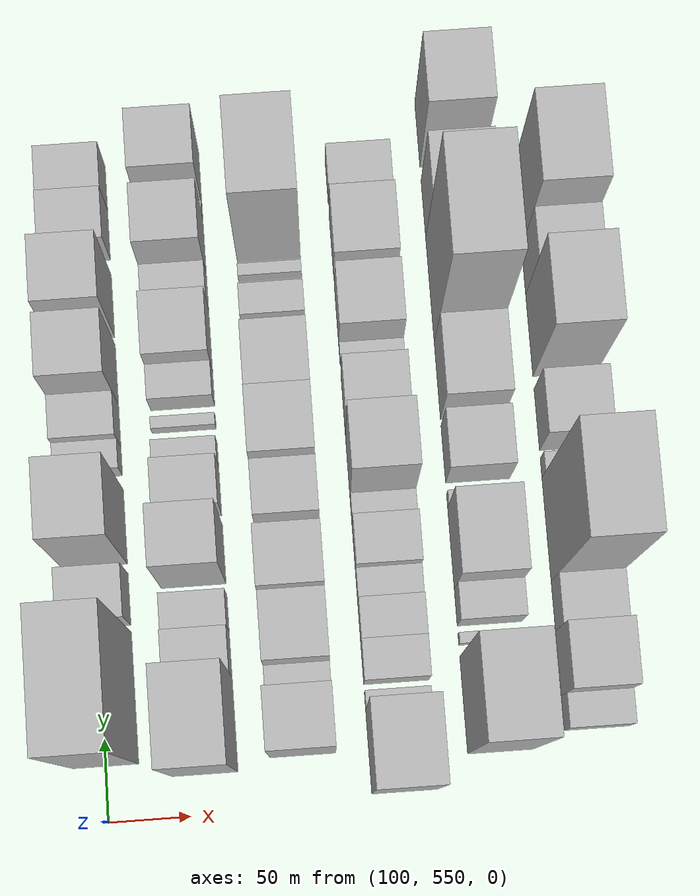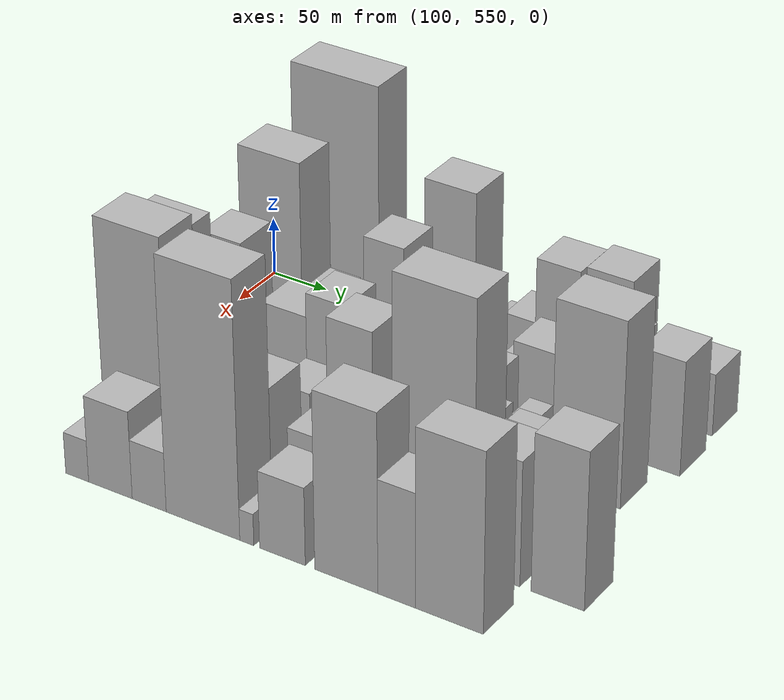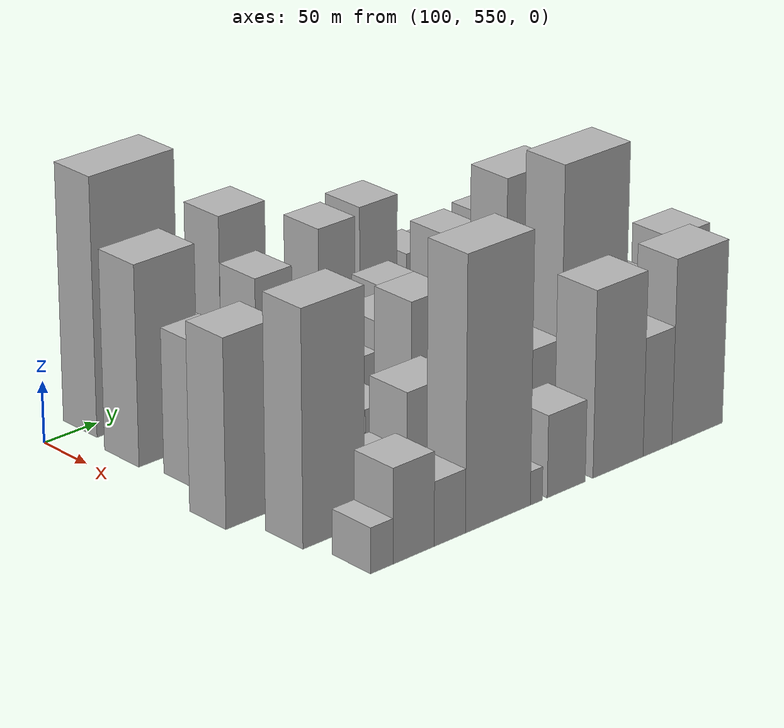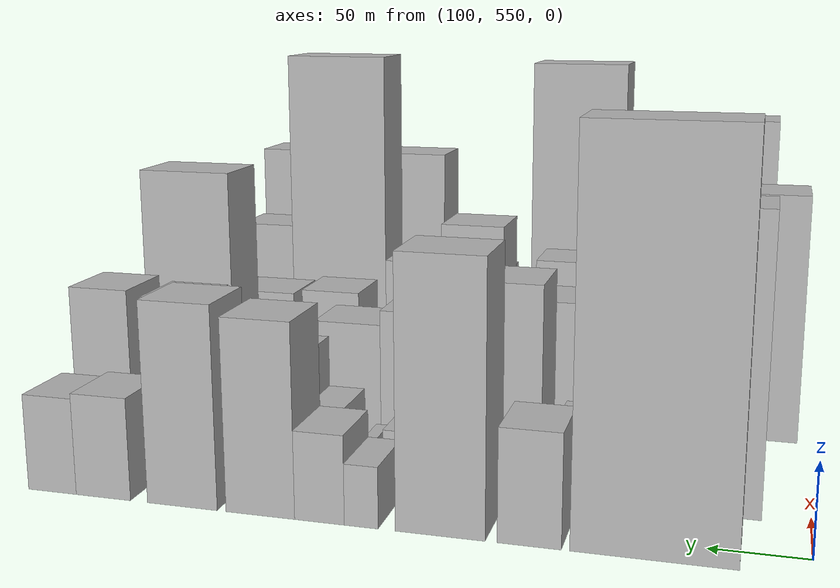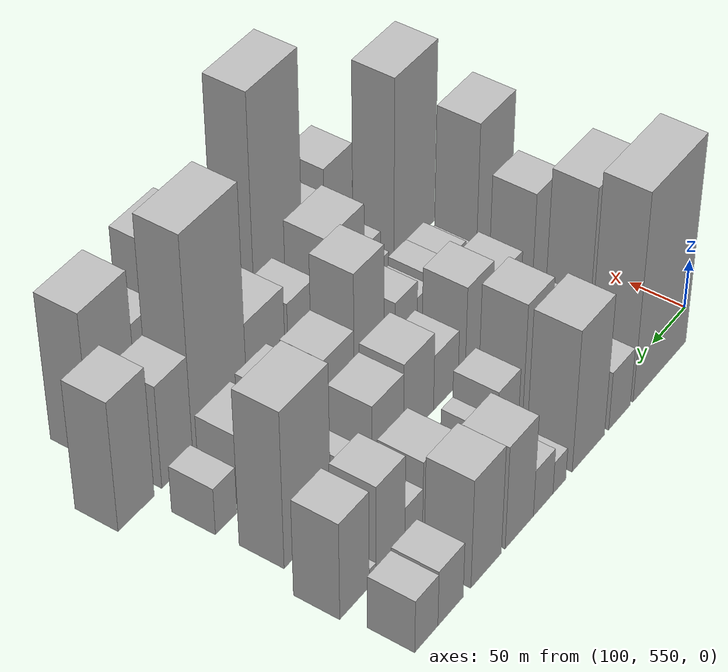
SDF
<sdf version="1.6">
 <world name="default">
  <model name="building_46">
   <static>1</static>
   <pose>100.0000 624.0056 0 0.000000 0.000000 0.000000</pose>
   <link name="link">
    <pose>0 0 105.00 0 0 0</pose>
    <collision name="collision"><geometry><box><size>40.0000 80.5047 210.0000</size></box></geometry></collision>
    <visual name="visual">
     <cast_shadows>0</cast_shadows>
     <geometry><box><size>40.0000 80.5047 210.0000</size></box></geometry>
     <material>
      <script>
       <uri>model://HANNAS_wall/materials/scripts</uri>
       <uri>model://HANNAS_wall/materials/textures</uri>
       <name>vrc/HANNAS_wall</name>
      </script>
     </material>
    </visual>
   </link>
  </model>
  <model name="building_47">
   <static>1</static>
   <pose>100.0000 684.2631 0 0.000000 0.000000 0.000000</pose>
   <link name="link">
    <pose>0 0 30.00 0 0 0</pose>
    <collision name="collision"><geometry><box><size>40.0000 32.0104 60.0000</size></box></geometry></collision>
    <visual name="visual">
     <cast_shadows>0</cast_shadows>
     <geometry><box><size>40.0000 32.0104 60.0000</size></box></geometry>
     <material>
      <script>
       <uri>model://HANNAS_wall/materials/scripts</uri>
       <uri>model://HANNAS_wall/materials/textures</uri>
       <name>vrc/HANNAS_wall</name>
      </script>
     </material>
    </visual>
   </link>
  </model>
  <model name="building_48">
   <static>1</static>
   <pose>100.0000 729.4753 0 0.000000 0.000000 0.000000</pose>
   <link name="link">
    <pose>0 0 72.00 0 0 0</pose>
    <collision name="collision"><geometry><box><size>40.0000 46.4140 144.0000</size></box></geometry></collision>
    <visual name="visual">
     <cast_shadows>0</cast_shadows>
     <geometry><box><size>40.0000 46.4140 144.0000</size></box></geometry>
     <material>
      <script>
       <uri>model://HANNAS_wall/materials/scripts</uri>
       <uri>model://HANNAS_wall/materials/textures</uri>
       <name>vrc/HANNAS_wall</name>
      </script>
     </material>
    </visual>
   </link>
  </model>
  <model name="building_49">
   <static>1</static>
   <pose>100.0000 770.7109 0 0.000000 0.000000 0.000000</pose>
   <link name="link">
    <pose>0 0 16.50 0 0 0</pose>
    <collision name="collision"><geometry><box><size>40.0000 18.0574 33.0000</size></box></geometry></collision>
    <visual name="visual">
     <cast_shadows>0</cast_shadows>
     <geometry><box><size>40.0000 18.0574 33.0000</size></box></geometry>
     <material>
      <script>
       <uri>model://HANNAS_wall/materials/scripts</uri>
       <uri>model://HANNAS_wall/materials/textures</uri>
       <name>vrc/HANNAS_wall</name>
      </script>
     </material>
    </visual>
   </link>
  </model>
  <model name="building_50">
   <static>1</static>
   <pose>100.0000 793.2319 0 0.000000 0.000000 0.000000</pose>
   <link name="link">
    <pose>0 0 24.00 0 0 0</pose>
    <collision name="collision"><geometry><box><size>40.0000 26.9845 48.0000</size></box></geometry></collision>
    <visual name="visual">
     <cast_shadows>0</cast_shadows>
     <geometry><box><size>40.0000 26.9845 48.0000</size></box></geometry>
     <material>
      <script>
       <uri>model://HANNAS_wall/materials/scripts</uri>
       <uri>model://HANNAS_wall/materials/textures</uri>
       <name>vrc/HANNAS_wall</name>
      </script>
     </material>
    </visual>
   </link>
  </model>
  <model name="building_51">
   <static>1</static>
   <pose>100.0000 825.8351 0 0.000000 0.000000 0.000000</pose>
   <link name="link">
    <pose>0 0 52.50 0 0 0</pose>
    <collision name="collision"><geometry><box><size>40.0000 38.2219 105.0000</size></box></geometry></collision>
    <visual name="visual">
     <cast_shadows>0</cast_shadows>
     <geometry><box><size>40.0000 38.2219 105.0000</size></box></geometry>
     <material>
      <script>
       <uri>model://HANNAS_wall/materials/scripts</uri>
       <uri>model://HANNAS_wall/materials/textures</uri>
       <name>vrc/HANNAS_wall</name>
      </script>
     </material>
    </visual>
   </link>
  </model>
  <model name="building_52">
   <static>1</static>
   <pose>100.0000 870.0385 0 0.000000 0.000000 0.000000</pose>
   <link name="link">
    <pose>0 0 55.50 0 0 0</pose>
    <collision name="collision"><geometry><box><size>40.0000 40.1848 111.0000</size></box></geometry></collision>
    <visual name="visual">
     <cast_shadows>0</cast_shadows>
     <geometry><box><size>40.0000 40.1848 111.0000</size></box></geometry>
     <material>
      <script>
       <uri>model://HANNAS_wall/materials/scripts</uri>
       <uri>model://HANNAS_wall/materials/textures</uri>
       <name>vrc/HANNAS_wall</name>
      </script>
     </material>
    </visual>
   </link>
  </model>
  <model name="building_53">
   <static>1</static>
   <pose>100.0000 916.3152 0 0.000000 0.000000 0.000000</pose>
   <link name="link">
    <pose>0 0 28.50 0 0 0</pose>
    <collision name="collision"><geometry><box><size>40.0000 32.3685 57.0000</size></box></geometry></collision>
    <visual name="visual">
     <cast_shadows>0</cast_shadows>
     <geometry><box><size>40.0000 32.3685 57.0000</size></box></geometry>
     <material>
      <script>
       <uri>model://HANNAS_wall/materials/scripts</uri>
       <uri>model://HANNAS_wall/materials/textures</uri>
       <name>vrc/HANNAS_wall</name>
      </script>
     </material>
    </visual>
   </link>
  </model>
  <model name="building_54">
   <static>1</static>
   <pose>100.0000 947.0214 0 0.000000 0.000000 0.000000</pose>
   <link name="link">
    <pose>0 0 27.00 0 0 0</pose>
    <collision name="collision"><geometry><box><size>40.0000 29.0439 54.0000</size></box></geometry></collision>
    <visual name="visual">
     <cast_shadows>0</cast_shadows>
     <geometry><box><size>40.0000 29.0439 54.0000</size></box></geometry>
     <material>
      <script>
       <uri>model://HANNAS_wall/materials/scripts</uri>
       <uri>model://HANNAS_wall/materials/textures</uri>
       <name>vrc/HANNAS_wall</name>
      </script>
     </material>
    </visual>
   </link>
  </model>
  <model name="building_99">
   <static>1</static>
   <pose>160.0000 603.3203 0 0.000000 0.000000 0.000000</pose>
   <link name="link">
    <pose>0 0 81.00 0 0 0</pose>
    <collision name="collision"><geometry><box><size>40.0000 57.2620 162.0000</size></box></geometry></collision>
    <visual name="visual">
     <cast_shadows>0</cast_shadows>
     <geometry><box><size>40.0000 57.2620 162.0000</size></box></geometry>
     <material>
      <script>
       <uri>model://HANNAS_wall/materials/scripts</uri>
       <uri>model://HANNAS_wall/materials/textures</uri>
       <name>vrc/HANNAS_wall</name>
      </script>
     </material>
    </visual>
   </link>
  </model>
  <model name="building_100">
   <static>1</static>
   <pose>160.0000 645.9640 0 0.000000 0.000000 0.000000</pose>
   <link name="link">
    <pose>0 0 25.50 0 0 0</pose>
    <collision name="collision"><geometry><box><size>40.0000 28.0254 51.0000</size></box></geometry></collision>
    <visual name="visual">
     <cast_shadows>0</cast_shadows>
     <geometry><box><size>40.0000 28.0254 51.0000</size></box></geometry>
     <material>
      <script>
       <uri>model://HANNAS_wall/materials/scripts</uri>
       <uri>model://HANNAS_wall/materials/textures</uri>
       <name>vrc/HANNAS_wall</name>
      </script>
     </material>
    </visual>
   </link>
  </model>
  <model name="building_101">
   <static>1</static>
   <pose>160.0000 671.3291 0 0.000000 0.000000 0.000000</pose>
   <link name="link">
    <pose>0 0 21.00 0 0 0</pose>
    <collision name="collision"><geometry><box><size>40.0000 22.7048 42.0000</size></box></geometry></collision>
    <visual name="visual">
     <cast_shadows>0</cast_shadows>
     <geometry><box><size>40.0000 22.7048 42.0000</size></box></geometry>
     <material>
      <script>
       <uri>model://HANNAS_wall/materials/scripts</uri>
       <uri>model://HANNAS_wall/materials/textures</uri>
       <name>vrc/HANNAS_wall</name>
      </script>
     </material>
    </visual>
   </link>
  </model>
  <model name="building_102">
   <static>1</static>
   <pose>160.0000 707.9195 0 0.000000 0.000000 0.000000</pose>
   <link name="link">
    <pose>0 0 58.50 0 0 0</pose>
    <collision name="collision"><geometry><box><size>40.0000 36.4761 117.0000</size></box></geometry></collision>
    <visual name="visual">
     <cast_shadows>0</cast_shadows>
     <geometry><box><size>40.0000 36.4761 117.0000</size></box></geometry>
     <material>
      <script>
       <uri>model://HANNAS_wall/materials/scripts</uri>
       <uri>model://HANNAS_wall/materials/textures</uri>
       <name>vrc/HANNAS_wall</name>
      </script>
     </material>
    </visual>
   </link>
  </model>
  <model name="building_103">
   <static>1</static>
   <pose>160.0000 747.2715 0 0.000000 0.000000 0.000000</pose>
   <link name="link">
    <pose>0 0 28.50 0 0 0</pose>
    <collision name="collision"><geometry><box><size>40.0000 30.2279 57.0000</size></box></geometry></collision>
    <visual name="visual">
     <cast_shadows>0</cast_shadows>
     <geometry><box><size>40.0000 30.2279 57.0000</size></box></geometry>
     <material>
      <script>
       <uri>model://HANNAS_wall/materials/scripts</uri>
       <uri>model://HANNAS_wall/materials/textures</uri>
       <name>vrc/HANNAS_wall</name>
      </script>
     </material>
    </visual>
   </link>
  </model>
  <model name="building_104">
   <static>1</static>
   <pose>160.0000 770.1640 0 0.000000 0.000000 0.000000</pose>
   <link name="link">
    <pose>0 0 15.00 0 0 0</pose>
    <collision name="collision"><geometry><box><size>40.0000 15.5571 30.0000</size></box></geometry></collision>
    <visual name="visual">
     <cast_shadows>0</cast_shadows>
     <geometry><box><size>40.0000 15.5571 30.0000</size></box></geometry>
     <material>
      <script>
       <uri>model://HANNAS_wall/materials/scripts</uri>
       <uri>model://HANNAS_wall/materials/textures</uri>
       <name>vrc/HANNAS_wall</name>
      </script>
     </material>
    </visual>
   </link>
  </model>
  <model name="building_105">
   <static>1</static>
   <pose>160.0000 790.7027 0 0.000000 0.000000 0.000000</pose>
   <link name="link">
    <pose>0 0 9.00 0 0 0</pose>
    <collision name="collision"><geometry><box><size>40.0000 7.5204 18.0000</size></box></geometry></collision>
    <visual name="visual">
     <cast_shadows>0</cast_shadows>
     <geometry><box><size>40.0000 7.5204 18.0000</size></box></geometry>
     <material>
      <script>
       <uri>model://HANNAS_wall/materials/scripts</uri>
       <uri>model://HANNAS_wall/materials/textures</uri>
       <name>vrc/HANNAS_wall</name>
      </script>
     </material>
    </visual>
   </link>
  </model>
  <model name="building_106">
   <static>1</static>
   <pose>160.0000 812.2842 0 0.000000 0.000000 0.000000</pose>
   <link name="link">
    <pose>0 0 19.50 0 0 0</pose>
    <collision name="collision"><geometry><box><size>40.0000 21.6426 39.0000</size></box></geometry></collision>
    <visual name="visual">
     <cast_shadows>0</cast_shadows>
     <geometry><box><size>40.0000 21.6426 39.0000</size></box></geometry>
     <material>
      <script>
       <uri>model://HANNAS_wall/materials/scripts</uri>
       <uri>model://HANNAS_wall/materials/textures</uri>
       <name>vrc/HANNAS_wall</name>
      </script>
     </material>
    </visual>
   </link>
  </model>
  <model name="building_107">
   <static>1</static>
   <pose>160.0000 842.6018 0 0.000000 0.000000 0.000000</pose>
   <link name="link">
    <pose>0 0 34.50 0 0 0</pose>
    <collision name="collision"><geometry><box><size>40.0000 38.9927 69.0000</size></box></geometry></collision>
    <visual name="visual">
     <cast_shadows>0</cast_shadows>
     <geometry><box><size>40.0000 38.9927 69.0000</size></box></geometry>
     <material>
      <script>
       <uri>model://HANNAS_wall/materials/scripts</uri>
       <uri>model://HANNAS_wall/materials/textures</uri>
       <name>vrc/HANNAS_wall</name>
      </script>
     </material>
    </visual>
   </link>
  </model>
  <model name="building_108">
   <static>1</static>
   <pose>160.0000 873.6828 0 0.000000 0.000000 0.000000</pose>
   <link name="link">
    <pose>0 0 21.00 0 0 0</pose>
    <collision name="collision"><geometry><box><size>40.0000 23.1692 42.0000</size></box></geometry></collision>
    <visual name="visual">
     <cast_shadows>0</cast_shadows>
     <geometry><box><size>40.0000 23.1692 42.0000</size></box></geometry>
     <material>
      <script>
       <uri>model://HANNAS_wall/materials/scripts</uri>
       <uri>model://HANNAS_wall/materials/textures</uri>
       <name>vrc/HANNAS_wall</name>
      </script>
     </material>
    </visual>
   </link>
  </model>
  <model name="building_109">
   <static>1</static>
   <pose>160.0000 903.3991 0 0.000000 0.000000 0.000000</pose>
   <link name="link">
    <pose>0 0 48.00 0 0 0</pose>
    <collision name="collision"><geometry><box><size>40.0000 36.2635 96.0000</size></box></geometry></collision>
    <visual name="visual">
     <cast_shadows>0</cast_shadows>
     <geometry><box><size>40.0000 36.2635 96.0000</size></box></geometry>
     <material>
      <script>
       <uri>model://HANNAS_wall/materials/scripts</uri>
       <uri>model://HANNAS_wall/materials/textures</uri>
       <name>vrc/HANNAS_wall</name>
      </script>
     </material>
    </visual>
   </link>
  </model>
  <model name="building_110">
   <static>1</static>
   <pose>160.0000 925.8365 0 0.000000 0.000000 0.000000</pose>
   <link name="link">
    <pose>0 0 9.00 0 0 0</pose>
    <collision name="collision"><geometry><box><size>40.0000 8.6113 18.0000</size></box></geometry></collision>
    <visual name="visual">
     <cast_shadows>0</cast_shadows>
     <geometry><box><size>40.0000 8.6113 18.0000</size></box></geometry>
     <material>
      <script>
       <uri>model://HANNAS_wall/materials/scripts</uri>
       <uri>model://HANNAS_wall/materials/textures</uri>
       <name>vrc/HANNAS_wall</name>
      </script>
     </material>
    </visual>
   </link>
  </model>
  <model name="building_111">
   <static>1</static>
   <pose>160.0000 948.3806 0 0.000000 0.000000 0.000000</pose>
   <link name="link">
    <pose>0 0 49.50 0 0 0</pose>
    <collision name="collision"><geometry><box><size>40.0000 36.4768 99.0000</size></box></geometry></collision>
    <visual name="visual">
     <cast_shadows>0</cast_shadows>
     <geometry><box><size>40.0000 36.4768 99.0000</size></box></geometry>
     <material>
      <script>
       <uri>model://HANNAS_wall/materials/scripts</uri>
       <uri>model://HANNAS_wall/materials/textures</uri>
       <name>vrc/HANNAS_wall</name>
      </script>
     </material>
    </visual>
   </link>
  </model>
  <model name="building_153">
   <static>1</static>
   <pose>220.0000 600.1336 0 0.000000 0.000000 0.000000</pose>
   <link name="link">
    <pose>0 0 58.50 0 0 0</pose>
    <collision name="collision"><geometry><box><size>40.0000 36.7301 117.0000</size></box></geometry></collision>
    <visual name="visual">
     <cast_shadows>0</cast_shadows>
     <geometry><box><size>40.0000 36.7301 117.0000</size></box></geometry>
     <material>
      <script>
       <uri>model://HANNAS_wall/materials/scripts</uri>
       <uri>model://HANNAS_wall/materials/textures</uri>
       <name>vrc/HANNAS_wall</name>
      </script>
     </material>
    </visual>
   </link>
  </model>
  <model name="building_154">
   <static>1</static>
   <pose>220.0000 627.1324 0 0.000000 0.000000 0.000000</pose>
   <link name="link">
    <pose>0 0 16.50 0 0 0</pose>
    <collision name="collision"><geometry><box><size>40.0000 17.2674 33.0000</size></box></geometry></collision>
    <visual name="visual">
     <cast_shadows>0</cast_shadows>
     <geometry><box><size>40.0000 17.2674 33.0000</size></box></geometry>
     <material>
      <script>
       <uri>model://HANNAS_wall/materials/scripts</uri>
       <uri>model://HANNAS_wall/materials/textures</uri>
       <name>vrc/HANNAS_wall</name>
      </script>
     </material>
    </visual>
   </link>
  </model>
  <model name="building_155">
   <static>1</static>
   <pose>220.0000 656.4556 0 0.000000 0.000000 0.000000</pose>
   <link name="link">
    <pose>0 0 36.00 0 0 0</pose>
    <collision name="collision"><geometry><box><size>40.0000 41.3791 72.0000</size></box></geometry></collision>
    <visual name="visual">
     <cast_shadows>0</cast_shadows>
     <geometry><box><size>40.0000 41.3791 72.0000</size></box></geometry>
     <material>
      <script>
       <uri>model://HANNAS_wall/materials/scripts</uri>
       <uri>model://HANNAS_wall/materials/textures</uri>
       <name>vrc/HANNAS_wall</name>
      </script>
     </material>
    </visual>
   </link>
  </model>
  <model name="building_156">
   <static>1</static>
   <pose>220.0000 695.4463 0 0.000000 0.000000 0.000000</pose>
   <link name="link">
    <pose>0 0 46.50 0 0 0</pose>
    <collision name="collision"><geometry><box><size>40.0000 36.6023 93.0000</size></box></geometry></collision>
    <visual name="visual">
     <cast_shadows>0</cast_shadows>
     <geometry><box><size>40.0000 36.6023 93.0000</size></box></geometry>
     <material>
      <script>
       <uri>model://HANNAS_wall/materials/scripts</uri>
       <uri>model://HANNAS_wall/materials/textures</uri>
       <name>vrc/HANNAS_wall</name>
      </script>
     </material>
    </visual>
   </link>
  </model>
  <model name="building_157">
   <static>1</static>
   <pose>220.0000 740.6428 0 0.000000 0.000000 0.000000</pose>
   <link name="link">
    <pose>0 0 28.50 0 0 0</pose>
    <collision name="collision"><geometry><box><size>40.0000 33.7906 57.0000</size></box></geometry></collision>
    <visual name="visual">
     <cast_shadows>0</cast_shadows>
     <geometry><box><size>40.0000 33.7906 57.0000</size></box></geometry>
     <material>
      <script>
       <uri>model://HANNAS_wall/materials/scripts</uri>
       <uri>model://HANNAS_wall/materials/textures</uri>
       <name>vrc/HANNAS_wall</name>
      </script>
     </material>
    </visual>
   </link>
  </model>
  <model name="building_158">
   <static>1</static>
   <pose>220.0000 777.8901 0 0.000000 0.000000 0.000000</pose>
   <link name="link">
    <pose>0 0 40.50 0 0 0</pose>
    <collision name="collision"><geometry><box><size>40.0000 40.7040 81.0000</size></box></geometry></collision>
    <visual name="visual">
     <cast_shadows>0</cast_shadows>
     <geometry><box><size>40.0000 40.7040 81.0000</size></box></geometry>
     <material>
      <script>
       <uri>model://HANNAS_wall/materials/scripts</uri>
       <uri>model://HANNAS_wall/materials/textures</uri>
       <name>vrc/HANNAS_wall</name>
      </script>
     </material>
    </visual>
   </link>
  </model>
  <model name="building_159">
   <static>1</static>
   <pose>220.0000 818.8765 0 0.000000 0.000000 0.000000</pose>
   <link name="link">
    <pose>0 0 36.00 0 0 0</pose>
    <collision name="collision"><geometry><box><size>40.0000 41.2688 72.0000</size></box></geometry></collision>
    <visual name="visual">
     <cast_shadows>0</cast_shadows>
     <geometry><box><size>40.0000 41.2688 72.0000</size></box></geometry>
     <material>
      <script>
       <uri>model://HANNAS_wall/materials/scripts</uri>
       <uri>model://HANNAS_wall/materials/textures</uri>
       <name>vrc/HANNAS_wall</name>
      </script>
     </material>
    </visual>
   </link>
  </model>
  <model name="building_160">
   <static>1</static>
   <pose>220.0000 844.7683 0 0.000000 0.000000 0.000000</pose>
   <link name="link">
    <pose>0 0 12.00 0 0 0</pose>
    <collision name="collision"><geometry><box><size>40.0000 10.5148 24.0000</size></box></geometry></collision>
    <visual name="visual">
     <cast_shadows>0</cast_shadows>
     <geometry><box><size>40.0000 10.5148 24.0000</size></box></geometry>
     <material>
      <script>
       <uri>model://HANNAS_wall/materials/scripts</uri>
       <uri>model://HANNAS_wall/materials/textures</uri>
       <name>vrc/HANNAS_wall</name>
      </script>
     </material>
    </visual>
   </link>
  </model>
  <model name="building_161">
   <static>1</static>
   <pose>220.0000 859.9335 0 0.000000 0.000000 0.000000</pose>
   <link name="link">
    <pose>0 0 19.50 0 0 0</pose>
    <collision name="collision"><geometry><box><size>40.0000 19.8157 39.0000</size></box></geometry></collision>
    <visual name="visual">
     <cast_shadows>0</cast_shadows>
     <geometry><box><size>40.0000 19.8157 39.0000</size></box></geometry>
     <material>
      <script>
       <uri>model://HANNAS_wall/materials/scripts</uri>
       <uri>model://HANNAS_wall/materials/textures</uri>
       <name>vrc/HANNAS_wall</name>
      </script>
     </material>
    </visual>
   </link>
  </model>
  <model name="building_162">
   <static>1</static>
   <pose>220.0000 883.7173 0 0.000000 0.000000 0.000000</pose>
   <link name="link">
    <pose>0 0 9.00 0 0 0</pose>
    <collision name="collision"><geometry><box><size>40.0000 7.7518 18.0000</size></box></geometry></collision>
    <visual name="visual">
     <cast_shadows>0</cast_shadows>
     <geometry><box><size>40.0000 7.7518 18.0000</size></box></geometry>
     <material>
      <script>
       <uri>model://HANNAS_wall/materials/scripts</uri>
       <uri>model://HANNAS_wall/materials/textures</uri>
       <name>vrc/HANNAS_wall</name>
      </script>
     </material>
    </visual>
   </link>
  </model>
  <model name="building_163">
   <static>1</static>
   <pose>220.0000 921.4375 0 0.000000 0.000000 0.000000</pose>
   <link name="link">
    <pose>0 0 79.50 0 0 0</pose>
    <collision name="collision"><geometry><box><size>40.0000 57.6886 159.0000</size></box></geometry></collision>
    <visual name="visual">
     <cast_shadows>0</cast_shadows>
     <geometry><box><size>40.0000 57.6886 159.0000</size></box></geometry>
     <material>
      <script>
       <uri>model://HANNAS_wall/materials/scripts</uri>
       <uri>model://HANNAS_wall/materials/textures</uri>
       <name>vrc/HANNAS_wall</name>
      </script>
     </material>
    </visual>
   </link>
  </model>
  <model name="building_208">
   <static>1</static>
   <pose>280.0000 580.8505 0 0.000000 0.000000 0.000000</pose>
   <link name="link">
    <pose>0 0 75.00 0 0 0</pose>
    <collision name="collision"><geometry><box><size>40.0000 50.4751 150.0000</size></box></geometry></collision>
    <visual name="visual">
     <cast_shadows>0</cast_shadows>
     <geometry><box><size>40.0000 50.4751 150.0000</size></box></geometry>
     <material>
      <script>
       <uri>model://HANNAS_wall/materials/scripts</uri>
       <uri>model://HANNAS_wall/materials/textures</uri>
       <name>vrc/HANNAS_wall</name>
      </script>
     </material>
    </visual>
   </link>
  </model>
  <model name="building_209">
   <static>1</static>
   <pose>280.0000 611.5061 0 0.000000 0.000000 0.000000</pose>
   <link name="link">
    <pose>0 0 13.50 0 0 0</pose>
    <collision name="collision"><geometry><box><size>40.0000 10.8360 27.0000</size></box></geometry></collision>
    <visual name="visual">
     <cast_shadows>0</cast_shadows>
     <geometry><box><size>40.0000 10.8360 27.0000</size></box></geometry>
     <material>
      <script>
       <uri>model://HANNAS_wall/materials/scripts</uri>
       <uri>model://HANNAS_wall/materials/textures</uri>
       <name>vrc/HANNAS_wall</name>
      </script>
     </material>
    </visual>
   </link>
  </model>
  <model name="building_210">
   <static>1</static>
   <pose>280.0000 634.4693 0 0.000000 0.000000 0.000000</pose>
   <link name="link">
    <pose>0 0 21.00 0 0 0</pose>
    <collision name="collision"><geometry><box><size>40.0000 25.0905 42.0000</size></box></geometry></collision>
    <visual name="visual">
     <cast_shadows>0</cast_shadows>
     <geometry><box><size>40.0000 25.0905 42.0000</size></box></geometry>
     <material>
      <script>
       <uri>model://HANNAS_wall/materials/scripts</uri>
       <uri>model://HANNAS_wall/materials/textures</uri>
       <name>vrc/HANNAS_wall</name>
      </script>
     </material>
    </visual>
   </link>
  </model>
  <model name="building_211">
   <static>1</static>
   <pose>280.0000 659.4440 0 0.000000 0.000000 0.000000</pose>
   <link name="link">
    <pose>0 0 21.00 0 0 0</pose>
    <collision name="collision"><geometry><box><size>40.0000 24.8589 42.0000</size></box></geometry></collision>
    <visual name="visual">
     <cast_shadows>0</cast_shadows>
     <geometry><box><size>40.0000 24.8589 42.0000</size></box></geometry>
     <material>
      <script>
       <uri>model://HANNAS_wall/materials/scripts</uri>
       <uri>model://HANNAS_wall/materials/textures</uri>
       <name>vrc/HANNAS_wall</name>
      </script>
     </material>
    </visual>
   </link>
  </model>
  <model name="building_212">
   <static>1</static>
   <pose>280.0000 681.1554 0 0.000000 0.000000 0.000000</pose>
   <link name="link">
    <pose>0 0 16.50 0 0 0</pose>
    <collision name="collision"><geometry><box><size>40.0000 18.5639 33.0000</size></box></geometry></collision>
    <visual name="visual">
     <cast_shadows>0</cast_shadows>
     <geometry><box><size>40.0000 18.5639 33.0000</size></box></geometry>
     <material>
      <script>
       <uri>model://HANNAS_wall/materials/scripts</uri>
       <uri>model://HANNAS_wall/materials/textures</uri>
       <name>vrc/HANNAS_wall</name>
      </script>
     </material>
    </visual>
   </link>
  </model>
  <model name="building_213">
   <static>1</static>
   <pose>280.0000 705.6825 0 0.000000 0.000000 0.000000</pose>
   <link name="link">
    <pose>0 0 25.50 0 0 0</pose>
    <collision name="collision"><geometry><box><size>40.0000 30.4902 51.0000</size></box></geometry></collision>
    <visual name="visual">
     <cast_shadows>0</cast_shadows>
     <geometry><box><size>40.0000 30.4902 51.0000</size></box></geometry>
     <material>
      <script>
       <uri>model://HANNAS_wall/materials/scripts</uri>
       <uri>model://HANNAS_wall/materials/textures</uri>
       <name>vrc/HANNAS_wall</name>
      </script>
     </material>
    </visual>
   </link>
  </model>
  <model name="building_214">
   <static>1</static>
   <pose>280.0000 728.7130 0 0.000000 0.000000 0.000000</pose>
   <link name="link">
    <pose>0 0 15.00 0 0 0</pose>
    <collision name="collision"><geometry><box><size>40.0000 15.5707 30.0000</size></box></geometry></collision>
    <visual name="visual">
     <cast_shadows>0</cast_shadows>
     <geometry><box><size>40.0000 15.5707 30.0000</size></box></geometry>
     <material>
      <script>
       <uri>model://HANNAS_wall/materials/scripts</uri>
       <uri>model://HANNAS_wall/materials/textures</uri>
       <name>vrc/HANNAS_wall</name>
      </script>
     </material>
    </visual>
   </link>
  </model>
  <model name="building_215">
   <static>1</static>
   <pose>280.0000 756.4574 0 0.000000 0.000000 0.000000</pose>
   <link name="link">
    <pose>0 0 61.50 0 0 0</pose>
    <collision name="collision"><geometry><box><size>40.0000 39.9183 123.0000</size></box></geometry></collision>
    <visual name="visual">
     <cast_shadows>0</cast_shadows>
     <geometry><box><size>40.0000 39.9183 123.0000</size></box></geometry>
     <material>
      <script>
       <uri>model://HANNAS_wall/materials/scripts</uri>
       <uri>model://HANNAS_wall/materials/textures</uri>
       <name>vrc/HANNAS_wall</name>
      </script>
     </material>
    </visual>
   </link>
  </model>
  <model name="building_216">
   <static>1</static>
   <pose>280.0000 795.9183 0 0.000000 0.000000 0.000000</pose>
   <link name="link">
    <pose>0 0 33.00 0 0 0</pose>
    <collision name="collision"><geometry><box><size>40.0000 39.0035 66.0000</size></box></geometry></collision>
    <visual name="visual">
     <cast_shadows>0</cast_shadows>
     <geometry><box><size>40.0000 39.0035 66.0000</size></box></geometry>
     <material>
      <script>
       <uri>model://HANNAS_wall/materials/scripts</uri>
       <uri>model://HANNAS_wall/materials/textures</uri>
       <name>vrc/HANNAS_wall</name>
      </script>
     </material>
    </visual>
   </link>
  </model>
  <model name="building_217">
   <static>1</static>
   <pose>280.0000 826.6223 0 0.000000 0.000000 0.000000</pose>
   <link name="link">
    <pose>0 0 12.00 0 0 0</pose>
    <collision name="collision"><geometry><box><size>40.0000 10.4045 24.0000</size></box></geometry></collision>
    <visual name="visual">
     <cast_shadows>0</cast_shadows>
     <geometry><box><size>40.0000 10.4045 24.0000</size></box></geometry>
     <material>
      <script>
       <uri>model://HANNAS_wall/materials/scripts</uri>
       <uri>model://HANNAS_wall/materials/textures</uri>
       <name>vrc/HANNAS_wall</name>
      </script>
     </material>
    </visual>
   </link>
  </model>
  <model name="building_218">
   <static>1</static>
   <pose>280.0000 851.1427 0 0.000000 0.000000 0.000000</pose>
   <link name="link">
    <pose>0 0 37.50 0 0 0</pose>
    <collision name="collision"><geometry><box><size>40.0000 38.6363 75.0000</size></box></geometry></collision>
    <visual name="visual">
     <cast_shadows>0</cast_shadows>
     <geometry><box><size>40.0000 38.6363 75.0000</size></box></geometry>
     <material>
      <script>
       <uri>model://HANNAS_wall/materials/scripts</uri>
       <uri>model://HANNAS_wall/materials/textures</uri>
       <name>vrc/HANNAS_wall</name>
      </script>
     </material>
    </visual>
   </link>
  </model>
  <model name="building_219">
   <static>1</static>
   <pose>280.0000 897.7607 0 0.000000 0.000000 0.000000</pose>
   <link name="link">
    <pose>0 0 36.00 0 0 0</pose>
    <collision name="collision"><geometry><box><size>40.0000 42.5996 72.0000</size></box></geometry></collision>
    <visual name="visual">
     <cast_shadows>0</cast_shadows>
     <geometry><box><size>40.0000 42.5996 72.0000</size></box></geometry>
     <material>
      <script>
       <uri>model://HANNAS_wall/materials/scripts</uri>
       <uri>model://HANNAS_wall/materials/textures</uri>
       <name>vrc/HANNAS_wall</name>
      </script>
     </material>
    </visual>
   </link>
  </model>
  <model name="building_220">
   <static>1</static>
   <pose>280.0000 939.0841 0 0.000000 0.000000 0.000000</pose>
   <link name="link">
    <pose>0 0 24.00 0 0 0</pose>
    <collision name="collision"><geometry><box><size>40.0000 26.0473 48.0000</size></box></geometry></collision>
    <visual name="visual">
     <cast_shadows>0</cast_shadows>
     <geometry><box><size>40.0000 26.0473 48.0000</size></box></geometry>
     <material>
      <script>
       <uri>model://HANNAS_wall/materials/scripts</uri>
       <uri>model://HANNAS_wall/materials/textures</uri>
       <name>vrc/HANNAS_wall</name>
      </script>
     </material>
    </visual>
   </link>
  </model>
  <model name="building_262">
   <static>1</static>
   <pose>340.0000 605.0865 0 0.000000 0.000000 0.000000</pose>
   <link name="link">
    <pose>0 0 93.00 0 0 0</pose>
    <collision name="collision"><geometry><box><size>40.0000 59.1932 186.0000</size></box></geometry></collision>
    <visual name="visual">
     <cast_shadows>0</cast_shadows>
     <geometry><box><size>40.0000 59.1932 186.0000</size></box></geometry>
     <material>
      <script>
       <uri>model://HANNAS_wall/materials/scripts</uri>
       <uri>model://HANNAS_wall/materials/textures</uri>
       <name>vrc/HANNAS_wall</name>
      </script>
     </material>
    </visual>
   </link>
  </model>
  <model name="building_263">
   <static>1</static>
   <pose>340.0000 645.1104 0 0.000000 0.000000 0.000000</pose>
   <link name="link">
    <pose>0 0 7.50 0 0 0</pose>
    <collision name="collision"><geometry><box><size>40.0000 6.8544 15.0000</size></box></geometry></collision>
    <visual name="visual">
     <cast_shadows>0</cast_shadows>
     <geometry><box><size>40.0000 6.8544 15.0000</size></box></geometry>
     <material>
      <script>
       <uri>model://HANNAS_wall/materials/scripts</uri>
       <uri>model://HANNAS_wall/materials/textures</uri>
       <name>vrc/HANNAS_wall</name>
      </script>
     </material>
    </visual>
   </link>
  </model>
  <model name="building_264">
   <static>1</static>
   <pose>340.0000 664.8765 0 0.000000 0.000000 0.000000</pose>
   <link name="link">
    <pose>0 0 22.50 0 0 0</pose>
    <collision name="collision"><geometry><box><size>40.0000 22.6779 45.0000</size></box></geometry></collision>
    <visual name="visual">
     <cast_shadows>0</cast_shadows>
     <geometry><box><size>40.0000 22.6779 45.0000</size></box></geometry>
     <material>
      <script>
       <uri>model://HANNAS_wall/materials/scripts</uri>
       <uri>model://HANNAS_wall/materials/textures</uri>
       <name>vrc/HANNAS_wall</name>
      </script>
     </material>
    </visual>
   </link>
  </model>
  <model name="building_265">
   <static>1</static>
   <pose>340.0000 701.6146 0 0.000000 0.000000 0.000000</pose>
   <link name="link">
    <pose>0 0 45.00 0 0 0</pose>
    <collision name="collision"><geometry><box><size>40.0000 50.7983 90.0000</size></box></geometry></collision>
    <visual name="visual">
     <cast_shadows>0</cast_shadows>
     <geometry><box><size>40.0000 50.7983 90.0000</size></box></geometry>
     <material>
      <script>
       <uri>model://HANNAS_wall/materials/scripts</uri>
       <uri>model://HANNAS_wall/materials/textures</uri>
       <name>vrc/HANNAS_wall</name>
      </script>
     </material>
    </visual>
   </link>
  </model>
  <model name="building_266">
   <static>1</static>
   <pose>340.0000 731.3748 0 0.000000 0.000000 0.000000</pose>
   <link name="link">
    <pose>0 0 9.00 0 0 0</pose>
    <collision name="collision"><geometry><box><size>40.0000 8.7220 18.0000</size></box></geometry></collision>
    <visual name="visual">
     <cast_shadows>0</cast_shadows>
     <geometry><box><size>40.0000 8.7220 18.0000</size></box></geometry>
     <material>
      <script>
       <uri>model://HANNAS_wall/materials/scripts</uri>
       <uri>model://HANNAS_wall/materials/textures</uri>
       <name>vrc/HANNAS_wall</name>
      </script>
     </material>
    </visual>
   </link>
  </model>
  <model name="building_267">
   <static>1</static>
   <pose>340.0000 760.8385 0 0.000000 0.000000 0.000000</pose>
   <link name="link">
    <pose>0 0 31.50 0 0 0</pose>
    <collision name="collision"><geometry><box><size>40.0000 36.2054 63.0000</size></box></geometry></collision>
    <visual name="visual">
     <cast_shadows>0</cast_shadows>
     <geometry><box><size>40.0000 36.2054 63.0000</size></box></geometry>
     <material>
      <script>
       <uri>model://HANNAS_wall/materials/scripts</uri>
       <uri>model://HANNAS_wall/materials/textures</uri>
       <name>vrc/HANNAS_wall</name>
      </script>
     </material>
    </visual>
   </link>
  </model>
  <model name="building_268">
   <static>1</static>
   <pose>340.0000 807.5757 0 0.000000 0.000000 0.000000</pose>
   <link name="link">
    <pose>0 0 42.00 0 0 0</pose>
    <collision name="collision"><geometry><box><size>40.0000 49.2691 84.0000</size></box></geometry></collision>
    <visual name="visual">
     <cast_shadows>0</cast_shadows>
     <geometry><box><size>40.0000 49.2691 84.0000</size></box></geometry>
     <material>
      <script>
       <uri>model://HANNAS_wall/materials/scripts</uri>
       <uri>model://HANNAS_wall/materials/textures</uri>
       <name>vrc/HANNAS_wall</name>
      </script>
     </material>
    </visual>
   </link>
  </model>
  <model name="building_269">
   <static>1</static>
   <pose>340.0000 866.1755 0 0.000000 0.000000 0.000000</pose>
   <link name="link">
    <pose>0 0 111.00 0 0 0</pose>
    <collision name="collision"><geometry><box><size>40.0000 67.9304 222.0000</size></box></geometry></collision>
    <visual name="visual">
     <cast_shadows>0</cast_shadows>
     <geometry><box><size>40.0000 67.9304 222.0000</size></box></geometry>
     <material>
      <script>
       <uri>model://HANNAS_wall/materials/scripts</uri>
       <uri>model://HANNAS_wall/materials/textures</uri>
       <name>vrc/HANNAS_wall</name>
      </script>
     </material>
    </visual>
   </link>
  </model>
  <model name="building_270">
   <static>1</static>
   <pose>340.0000 919.0198 0 0.000000 0.000000 0.000000</pose>
   <link name="link">
    <pose>0 0 52.50 0 0 0</pose>
    <collision name="collision"><geometry><box><size>40.0000 37.7582 105.0000</size></box></geometry></collision>
    <visual name="visual">
     <cast_shadows>0</cast_shadows>
     <geometry><box><size>40.0000 37.7582 105.0000</size></box></geometry>
     <material>
      <script>
       <uri>model://HANNAS_wall/materials/scripts</uri>
       <uri>model://HANNAS_wall/materials/textures</uri>
       <name>vrc/HANNAS_wall</name>
      </script>
     </material>
    </visual>
   </link>
  </model>
  <model name="building_271">
   <static>1</static>
   <pose>340.0000 968.2472 0 0.000000 0.000000 0.000000</pose>
   <link name="link">
    <pose>0 0 66.00 0 0 0</pose>
    <collision name="collision"><geometry><box><size>40.0000 42.6966 132.0000</size></box></geometry></collision>
    <visual name="visual">
     <cast_shadows>0</cast_shadows>
     <geometry><box><size>40.0000 42.6966 132.0000</size></box></geometry>
     <material>
      <script>
       <uri>model://HANNAS_wall/materials/scripts</uri>
       <uri>model://HANNAS_wall/materials/textures</uri>
       <name>vrc/HANNAS_wall</name>
      </script>
     </material>
    </visual>
   </link>
  </model>
  <model name="building_317">
   <static>1</static>
   <pose>400.0000 595.9136 0 0.000000 0.000000 0.000000</pose>
   <link name="link">
    <pose>0 0 18.00 0 0 0</pose>
    <collision name="collision"><geometry><box><size>40.0000 21.1144 36.0000</size></box></geometry></collision>
    <visual name="visual">
     <cast_shadows>0</cast_shadows>
     <geometry><box><size>40.0000 21.1144 36.0000</size></box></geometry>
     <material>
      <script>
       <uri>model://HANNAS_wall/materials/scripts</uri>
       <uri>model://HANNAS_wall/materials/textures</uri>
       <name>vrc/HANNAS_wall</name>
      </script>
     </material>
    </visual>
   </link>
  </model>
  <model name="building_318">
   <static>1</static>
   <pose>400.0000 626.3579 0 0.000000 0.000000 0.000000</pose>
   <link name="link">
    <pose>0 0 37.50 0 0 0</pose>
    <collision name="collision"><geometry><box><size>40.0000 39.7743 75.0000</size></box></geometry></collision>
    <visual name="visual">
     <cast_shadows>0</cast_shadows>
     <geometry><box><size>40.0000 39.7743 75.0000</size></box></geometry>
     <material>
      <script>
       <uri>model://HANNAS_wall/materials/scripts</uri>
       <uri>model://HANNAS_wall/materials/textures</uri>
       <name>vrc/HANNAS_wall</name>
      </script>
     </material>
    </visual>
   </link>
  </model>
  <model name="building_319">
   <static>1</static>
   <pose>400.0000 661.5425 0 0.000000 0.000000 0.000000</pose>
   <link name="link">
    <pose>0 0 25.50 0 0 0</pose>
    <collision name="collision"><geometry><box><size>40.0000 30.5948 51.0000</size></box></geometry></collision>
    <visual name="visual">
     <cast_shadows>0</cast_shadows>
     <geometry><box><size>40.0000 30.5948 51.0000</size></box></geometry>
     <material>
      <script>
       <uri>model://HANNAS_wall/materials/scripts</uri>
       <uri>model://HANNAS_wall/materials/textures</uri>
       <name>vrc/HANNAS_wall</name>
      </script>
     </material>
    </visual>
   </link>
  </model>
  <model name="building_320">
   <static>1</static>
   <pose>400.0000 709.3057 0 0.000000 0.000000 0.000000</pose>
   <link name="link">
    <pose>0 0 108.00 0 0 0</pose>
    <collision name="collision"><geometry><box><size>40.0000 64.9316 216.0000</size></box></geometry></collision>
    <visual name="visual">
     <cast_shadows>0</cast_shadows>
     <geometry><box><size>40.0000 64.9316 216.0000</size></box></geometry>
     <material>
      <script>
       <uri>model://HANNAS_wall/materials/scripts</uri>
       <uri>model://HANNAS_wall/materials/textures</uri>
       <name>vrc/HANNAS_wall</name>
      </script>
     </material>
    </visual>
   </link>
  </model>
  <model name="building_321">
   <static>1</static>
   <pose>400.0000 747.8555 0 0.000000 0.000000 0.000000</pose>
   <link name="link">
    <pose>0 0 13.50 0 0 0</pose>
    <collision name="collision"><geometry><box><size>40.0000 12.1680 27.0000</size></box></geometry></collision>
    <visual name="visual">
     <cast_shadows>0</cast_shadows>
     <geometry><box><size>40.0000 12.1680 27.0000</size></box></geometry>
     <material>
      <script>
       <uri>model://HANNAS_wall/materials/scripts</uri>
       <uri>model://HANNAS_wall/materials/textures</uri>
       <name>vrc/HANNAS_wall</name>
      </script>
     </material>
    </visual>
   </link>
  </model>
  <model name="building_322">
   <static>1</static>
   <pose>400.0000 778.5516 0 0.000000 0.000000 0.000000</pose>
   <link name="link">
    <pose>0 0 33.00 0 0 0</pose>
    <collision name="collision"><geometry><box><size>40.0000 39.2241 66.0000</size></box></geometry></collision>
    <visual name="visual">
     <cast_shadows>0</cast_shadows>
     <geometry><box><size>40.0000 39.2241 66.0000</size></box></geometry>
     <material>
      <script>
       <uri>model://HANNAS_wall/materials/scripts</uri>
       <uri>model://HANNAS_wall/materials/textures</uri>
       <name>vrc/HANNAS_wall</name>
      </script>
     </material>
    </visual>
   </link>
  </model>
  <model name="building_323">
   <static>1</static>
   <pose>400.0000 832.5583 0 0.000000 0.000000 0.000000</pose>
   <link name="link">
    <pose>0 0 75.00 0 0 0</pose>
    <collision name="collision"><geometry><box><size>40.0000 52.7893 150.0000</size></box></geometry></collision>
    <visual name="visual">
     <cast_shadows>0</cast_shadows>
     <geometry><box><size>40.0000 52.7893 150.0000</size></box></geometry>
     <material>
      <script>
       <uri>model://HANNAS_wall/materials/scripts</uri>
       <uri>model://HANNAS_wall/materials/textures</uri>
       <name>vrc/HANNAS_wall</name>
      </script>
     </material>
    </visual>
   </link>
  </model>
  <model name="building_324">
   <static>1</static>
   <pose>400.0000 874.3813 0 0.000000 0.000000 0.000000</pose>
   <link name="link">
    <pose>0 0 48.00 0 0 0</pose>
    <collision name="collision"><geometry><box><size>40.0000 30.8568 96.0000</size></box></geometry></collision>
    <visual name="visual">
     <cast_shadows>0</cast_shadows>
     <geometry><box><size>40.0000 30.8568 96.0000</size></box></geometry>
     <material>
      <script>
       <uri>model://HANNAS_wall/materials/scripts</uri>
       <uri>model://HANNAS_wall/materials/textures</uri>
       <name>vrc/HANNAS_wall</name>
      </script>
     </material>
    </visual>
   </link>
  </model>
  <model name="building_325">
   <static>1</static>
   <pose>400.0000 917.3525 0 0.000000 0.000000 0.000000</pose>
   <link name="link">
    <pose>0 0 75.00 0 0 0</pose>
    <collision name="collision"><geometry><box><size>40.0000 55.0856 150.0000</size></box></geometry></collision>
    <visual name="visual">
     <cast_shadows>0</cast_shadows>
     <geometry><box><size>40.0000 55.0856 150.0000</size></box></geometry>
     <material>
      <script>
       <uri>model://HANNAS_wall/materials/scripts</uri>
       <uri>model://HANNAS_wall/materials/textures</uri>
       <name>vrc/HANNAS_wall</name>
      </script>
     </material>
    </visual>
   </link>
  </model>
 </world>
</sdf>
